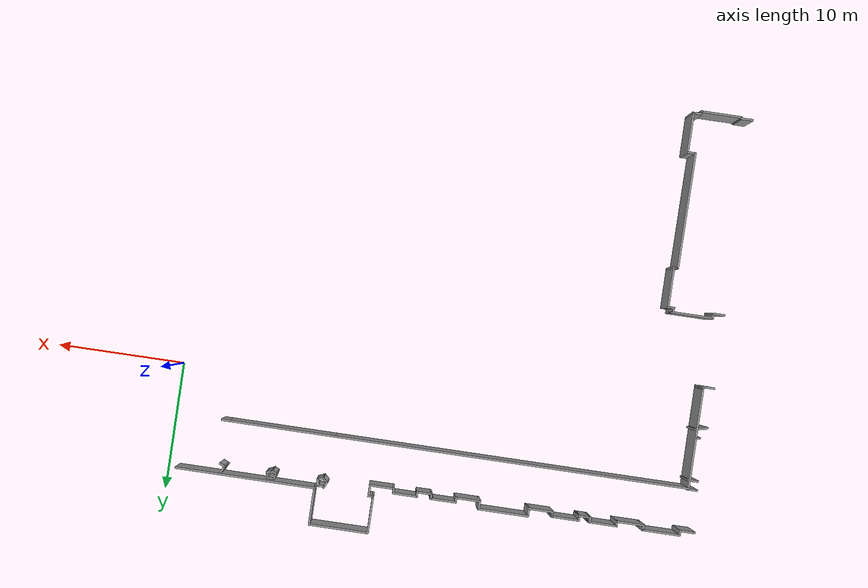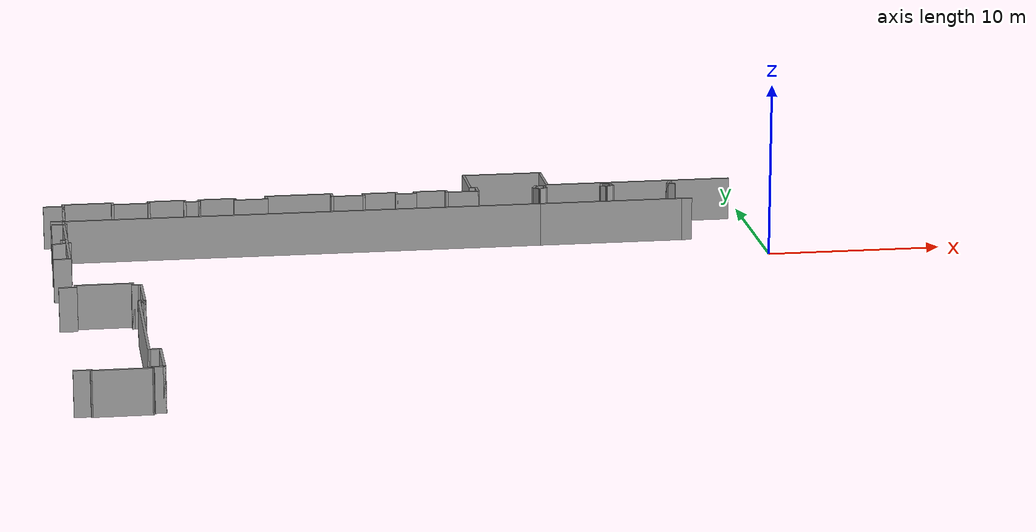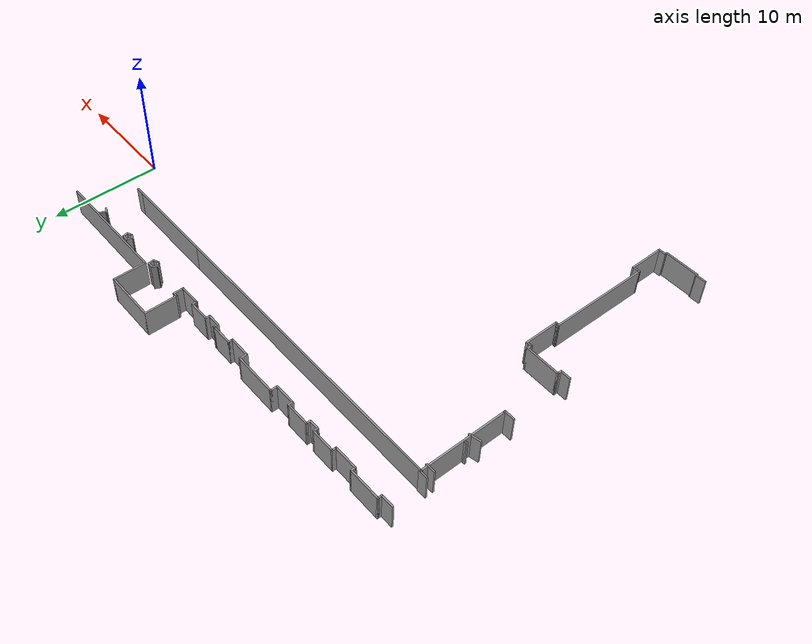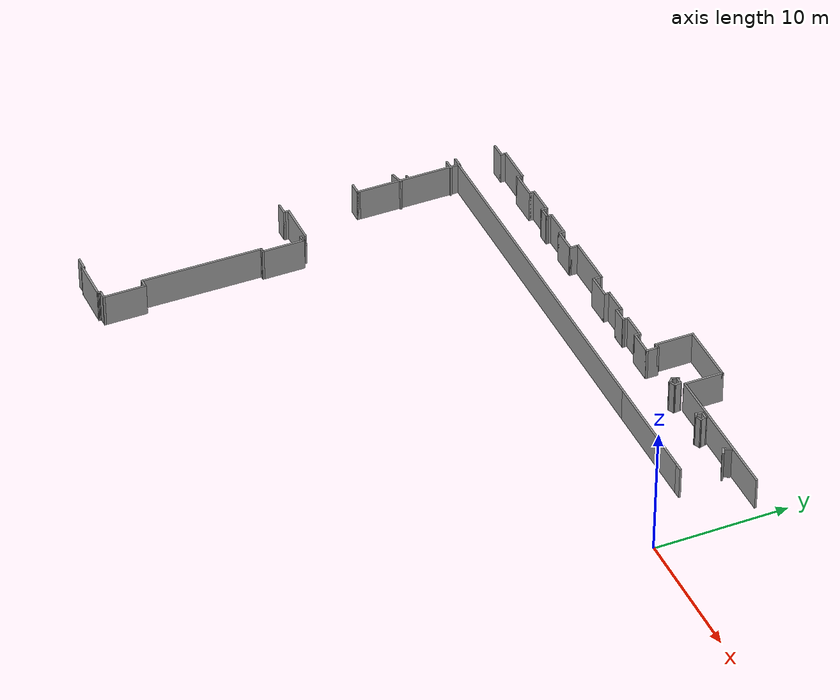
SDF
<sdf version="1.7">
 <model name="TD_n2">
  <pose>-6.42415 -9.1609 0 0 -0 0</pose>
  <link name="Wall_10">
   <collision name="Wall_10_Collision">
    <geometry><box><size>0.25 0.15 2.5</size></box></geometry>
    <pose>0 0 1.25 0 -0 0</pose>
   </collision>
   <visual name="Wall_10_Visual">
    <pose>0 0 1.25 0 -0 0</pose>
    <geometry><box><size>0.25 0.15 2.5</size></box></geometry>
    <material>
     <script><uri>file://media/materials/scripts/gazebo.material</uri><name>Gazebo/Grey</name></script>
     <ambient>1 1 1 1</ambient>
    </material>
    <meta><layer>0</layer></meta>
   </visual>
   <pose>-30.6624 -3.84263 0 0 -0 3.14159</pose>
  </link>
  <link name="Wall_11">
   <collision name="Wall_11_Collision">
    <geometry><box><size>0.25 0.15 2.5</size></box></geometry>
    <pose>0 0 1.25 0 -0 0</pose>
   </collision>
   <visual name="Wall_11_Visual">
    <pose>0 0 1.25 0 -0 0</pose>
    <geometry><box><size>0.25 0.15 2.5</size></box></geometry>
    <material>
     <script><uri>file://media/materials/scripts/gazebo.material</uri><name>Gazebo/Grey</name></script>
     <ambient>1 1 1 1</ambient>
    </material>
    <meta><layer>0</layer></meta>
   </visual>
   <pose>-30.7624 -3.84263 0 0 -0 3.14159</pose>
  </link>
  <link name="Wall_130">
   <collision name="Wall_130_Collision">
    <geometry><box><size>1.25 0.15 2.5</size></box></geometry>
    <pose>0 0 1.25 0 -0 0</pose>
   </collision>
   <visual name="Wall_130_Visual">
    <pose>0 0 1.25 0 -0 0</pose>
    <geometry><box><size>1.25 0.15 2.5</size></box></geometry>
    <material>
     <script><uri>file://media/materials/scripts/gazebo.material</uri><name>Gazebo/Grey</name></script>
     <ambient>1 1 1 1</ambient>
    </material>
    <meta><layer>0</layer></meta>
   </visual>
   <pose>-34.4926 16.2907 0 0 -0 0</pose>
  </link>
  <link name="Wall_131">
   <collision name="Wall_131_Collision">
    <geometry><box><size>0.5 0.15 2.5</size></box></geometry>
    <pose>0 0 1.25 0 -0 0</pose>
   </collision>
   <visual name="Wall_131_Visual">
    <pose>0 0 1.25 0 -0 0</pose>
    <geometry><box><size>0.5 0.15 2.5</size></box></geometry>
    <material>
     <script><uri>file://media/materials/scripts/gazebo.material</uri><name>Gazebo/Grey</name></script>
     <ambient>1 1 1 1</ambient>
    </material>
    <meta><layer>0</layer></meta>
   </visual>
   <pose>-33.9426 16.4657 0 0 -0 1.5708</pose>
  </link>
  <link name="Wall_132">
   <collision name="Wall_132_Collision">
    <geometry><box><size>3 0.15 2.5</size></box></geometry>
    <pose>0 0 1.25 0 -0 0</pose>
   </collision>
   <visual name="Wall_132_Visual">
    <pose>0 0 1.25 0 -0 0</pose>
    <geometry><box><size>3 0.15 2.5</size></box></geometry>
    <material>
     <script><uri>file://media/materials/scripts/gazebo.material</uri><name>Gazebo/Grey</name></script>
     <ambient>1 1 1 1</ambient>
    </material>
    <meta><layer>0</layer></meta>
   </visual>
   <pose>-32.5176 16.6407 0 0 -0 0</pose>
  </link>
  <link name="Wall_133">
   <collision name="Wall_133_Collision">
    <geometry><box><size>0.5 0.15 2.5</size></box></geometry>
    <pose>0 0 1.25 0 -0 0</pose>
   </collision>
   <visual name="Wall_133_Visual">
    <pose>0 0 1.25 0 -0 0</pose>
    <geometry><box><size>0.5 0.15 2.5</size></box></geometry>
    <material>
     <script><uri>file://media/materials/scripts/gazebo.material</uri><name>Gazebo/Grey</name></script>
     <ambient>1 1 1 1</ambient>
    </material>
    <meta><layer>0</layer></meta>
   </visual>
   <pose>-31.0926 16.4657 0 0 -0 -1.5708</pose>
  </link>
  <link name="Wall_134">
   <collision name="Wall_134_Collision">
    <geometry><box><size>2.25 0.15 2.5</size></box></geometry>
    <pose>0 0 1.25 0 -0 0</pose>
   </collision>
   <visual name="Wall_134_Visual">
    <pose>0 0 1.25 0 -0 0</pose>
    <geometry><box><size>2.25 0.15 2.5</size></box></geometry>
    <material>
     <script><uri>file://media/materials/scripts/gazebo.material</uri><name>Gazebo/Grey</name></script>
     <ambient>1 1 1 1</ambient>
    </material>
    <meta><layer>0</layer></meta>
   </visual>
   <pose>-30.0426 16.2907 0 0 -0 0</pose>
  </link>
  <link name="Wall_135">
   <collision name="Wall_135_Collision">
    <geometry><box><size>0.5 0.15 2.5</size></box></geometry>
    <pose>0 0 1.25 0 -0 0</pose>
   </collision>
   <visual name="Wall_135_Visual">
    <pose>0 0 1.25 0 -0 0</pose>
    <geometry><box><size>0.5 0.15 2.5</size></box></geometry>
    <material>
     <script><uri>file://media/materials/scripts/gazebo.material</uri><name>Gazebo/Grey</name></script>
     <ambient>1 1 1 1</ambient>
    </material>
    <meta><layer>0</layer></meta>
   </visual>
   <pose>-28.9926 16.4657 0 0 -0 1.5708</pose>
  </link>
  <link name="Wall_136">
   <collision name="Wall_136_Collision">
    <geometry><box><size>2.25 0.15 2.5</size></box></geometry>
    <pose>0 0 1.25 0 -0 0</pose>
   </collision>
   <visual name="Wall_136_Visual">
    <pose>0 0 1.25 0 -0 0</pose>
    <geometry><box><size>2.25 0.15 2.5</size></box></geometry>
    <material>
     <script><uri>file://media/materials/scripts/gazebo.material</uri><name>Gazebo/Grey</name></script>
     <ambient>1 1 1 1</ambient>
    </material>
    <meta><layer>0</layer></meta>
   </visual>
   <pose>-27.9426 16.6407 0 0 -0 0</pose>
  </link>
  <link name="Wall_137">
   <collision name="Wall_137_Collision">
    <geometry><box><size>0.5 0.15 2.5</size></box></geometry>
    <pose>0 0 1.25 0 -0 0</pose>
   </collision>
   <visual name="Wall_137_Visual">
    <pose>0 0 1.25 0 -0 0</pose>
    <geometry><box><size>0.5 0.15 2.5</size></box></geometry>
    <material>
     <script><uri>file://media/materials/scripts/gazebo.material</uri><name>Gazebo/Grey</name></script>
     <ambient>1 1 1 1</ambient>
    </material>
    <meta><layer>0</layer></meta>
   </visual>
   <pose>-26.8926 16.4657 0 0 -0 -1.5708</pose>
  </link>
  <link name="Wall_138">
   <collision name="Wall_138_Collision">
    <geometry><box><size>1 0.15 2.5</size></box></geometry>
    <pose>0 0 1.25 0 -0 0</pose>
   </collision>
   <visual name="Wall_138_Visual">
    <pose>0 0 1.25 0 -0 0</pose>
    <geometry><box><size>1 0.15 2.5</size></box></geometry>
    <material>
     <script><uri>file://media/materials/scripts/gazebo.material</uri><name>Gazebo/Grey</name></script>
     <ambient>1 1 1 1</ambient>
    </material>
    <meta><layer>0</layer></meta>
   </visual>
   <pose>-26.4676 16.2907 0 0 -0 0</pose>
  </link>
  <link name="Wall_139">
   <collision name="Wall_139_Collision">
    <geometry><box><size>0.5 0.15 2.5</size></box></geometry>
    <pose>0 0 1.25 0 -0 0</pose>
   </collision>
   <visual name="Wall_139_Visual">
    <pose>0 0 1.25 0 -0 0</pose>
    <geometry><box><size>0.5 0.15 2.5</size></box></geometry>
    <material>
     <script><uri>file://media/materials/scripts/gazebo.material</uri><name>Gazebo/Grey</name></script>
     <ambient>1 1 1 1</ambient>
    </material>
    <meta><layer>0</layer></meta>
   </visual>
   <pose>-26.0426 16.4657 0 0 -0 1.5708</pose>
  </link>
  <link name="Wall_140">
   <collision name="Wall_140_Collision">
    <geometry><box><size>2.25 0.15 2.5</size></box></geometry>
    <pose>0 0 1.25 0 -0 0</pose>
   </collision>
   <visual name="Wall_140_Visual">
    <pose>0 0 1.25 0 -0 0</pose>
    <geometry><box><size>2.25 0.15 2.5</size></box></geometry>
    <material>
     <script><uri>file://media/materials/scripts/gazebo.material</uri><name>Gazebo/Grey</name></script>
     <ambient>1 1 1 1</ambient>
    </material>
    <meta><layer>0</layer></meta>
   </visual>
   <pose>-24.9926 16.6407 0 0 -0 0</pose>
  </link>
  <link name="Wall_141">
   <collision name="Wall_141_Collision">
    <geometry><box><size>0.5 0.15 2.5</size></box></geometry>
    <pose>0 0 1.25 0 -0 0</pose>
   </collision>
   <visual name="Wall_141_Visual">
    <pose>0 0 1.25 0 -0 0</pose>
    <geometry><box><size>0.5 0.15 2.5</size></box></geometry>
    <material>
     <script><uri>file://media/materials/scripts/gazebo.material</uri><name>Gazebo/Grey</name></script>
     <ambient>1 1 1 1</ambient>
    </material>
    <meta><layer>0</layer></meta>
   </visual>
   <pose>-23.9426 16.4657 0 0 -0 -1.5708</pose>
  </link>
  <link name="Wall_143">
   <collision name="Wall_143_Collision">
    <geometry><box><size>2 0.15 2.5</size></box></geometry>
    <pose>0 0 1.25 0 -0 0</pose>
   </collision>
   <visual name="Wall_143_Visual">
    <pose>0 0 1.25 0 -0 0</pose>
    <geometry><box><size>2 0.15 2.5</size></box></geometry>
    <material>
     <script><uri>file://media/materials/scripts/gazebo.material</uri><name>Gazebo/Grey</name></script>
     <ambient>1 1 1 1</ambient>
    </material>
    <meta><layer>0</layer></meta>
   </visual>
   <pose>-23.0176 16.2907 0 0 -0 0</pose>
  </link>
  <link name="Wall_144">
   <collision name="Wall_144_Collision">
    <geometry><box><size>0.75 0.15 2.5</size></box></geometry>
    <pose>0 0 1.25 0 -0 0</pose>
   </collision>
   <visual name="Wall_144_Visual">
    <pose>0 0 1.25 0 -0 0</pose>
    <geometry><box><size>0.75 0.15 2.5</size></box></geometry>
    <material>
     <script><uri>file://media/materials/scripts/gazebo.material</uri><name>Gazebo/Grey</name></script>
     <ambient>1 1 1 1</ambient>
    </material>
    <meta><layer>0</layer></meta>
   </visual>
   <pose>-22.0926 16.5907 0 0 -0 1.5708</pose>
  </link>
  <link name="Wall_145">
   <collision name="Wall_145_Collision">
    <geometry><box><size>4 0.15 2.5</size></box></geometry>
    <pose>0 0 1.25 0 -0 0</pose>
   </collision>
   <visual name="Wall_145_Visual">
    <pose>0 0 1.25 0 -0 0</pose>
    <geometry><box><size>4 0.15 2.5</size></box></geometry>
    <material>
     <script><uri>file://media/materials/scripts/gazebo.material</uri><name>Gazebo/Grey</name></script>
     <ambient>1 1 1 1</ambient>
    </material>
    <meta><layer>0</layer></meta>
   </visual>
   <pose>-20.1676 16.8907 0 0 -0 0</pose>
  </link>
  <link name="Wall_146">
   <collision name="Wall_146_Collision">
    <geometry><box><size>0.75 0.15 2.5</size></box></geometry>
    <pose>0 0 1.25 0 -0 0</pose>
   </collision>
   <visual name="Wall_146_Visual">
    <pose>0 0 1.25 0 -0 0</pose>
    <geometry><box><size>0.75 0.15 2.5</size></box></geometry>
    <material>
     <script><uri>file://media/materials/scripts/gazebo.material</uri><name>Gazebo/Grey</name></script>
     <ambient>1 1 1 1</ambient>
    </material>
    <meta><layer>0</layer></meta>
   </visual>
   <pose>-18.2426 16.5907 0 0 -0 -1.5708</pose>
  </link>
  <link name="Wall_147">
   <collision name="Wall_147_Collision">
    <geometry><box><size>2 0.15 2.5</size></box></geometry>
    <pose>0 0 1.25 0 -0 0</pose>
   </collision>
   <visual name="Wall_147_Visual">
    <pose>0 0 1.25 0 -0 0</pose>
    <geometry><box><size>2 0.15 2.5</size></box></geometry>
    <material>
     <script><uri>file://media/materials/scripts/gazebo.material</uri><name>Gazebo/Grey</name></script>
     <ambient>1 1 1 1</ambient>
    </material>
    <meta><layer>0</layer></meta>
   </visual>
   <pose>-17.3176 16.2907 0 0 -0 0</pose>
  </link>
  <link name="Wall_148">
   <collision name="Wall_148_Collision">
    <geometry><box><size>0.5 0.15 2.5</size></box></geometry>
    <pose>0 0 1.25 0 -0 0</pose>
   </collision>
   <visual name="Wall_148_Visual">
    <pose>0 0 1.25 0 -0 0</pose>
    <geometry><box><size>0.5 0.15 2.5</size></box></geometry>
    <material>
     <script><uri>file://media/materials/scripts/gazebo.material</uri><name>Gazebo/Grey</name></script>
     <ambient>1 1 1 1</ambient>
    </material>
    <meta><layer>0</layer></meta>
   </visual>
   <pose>-16.3926 16.4657 0 0 -0 1.5708</pose>
  </link>
  <link name="Wall_149">
   <collision name="Wall_149_Collision">
    <geometry><box><size>2 0.15 2.5</size></box></geometry>
    <pose>0 0 1.25 0 -0 0</pose>
   </collision>
   <visual name="Wall_149_Visual">
    <pose>0 0 1.25 0 -0 0</pose>
    <geometry><box><size>2 0.15 2.5</size></box></geometry>
    <material>
     <script><uri>file://media/materials/scripts/gazebo.material</uri><name>Gazebo/Grey</name></script>
     <ambient>1 1 1 1</ambient>
    </material>
    <meta><layer>0</layer></meta>
   </visual>
   <pose>-15.4676 16.6407 0 0 -0 0</pose>
  </link>
  <link name="Wall_150">
   <collision name="Wall_150_Collision">
    <geometry><box><size>0.25 0.15 2.5</size></box></geometry>
    <pose>0 0 1.25 0 -0 0</pose>
   </collision>
   <visual name="Wall_150_Visual">
    <pose>0 0 1.25 0 -0 0</pose>
    <geometry><box><size>0.25 0.15 2.5</size></box></geometry>
    <material>
     <script><uri>file://media/materials/scripts/gazebo.material</uri><name>Gazebo/Grey</name></script>
     <ambient>1 1 1 1</ambient>
    </material>
    <meta><layer>0</layer></meta>
   </visual>
   <pose>-14.4926 16.6407 0 0 -0 0</pose>
  </link>
  <link name="Wall_151">
   <collision name="Wall_151_Collision">
    <geometry><box><size>0.5 0.15 2.5</size></box></geometry>
    <pose>0 0 1.25 0 -0 0</pose>
   </collision>
   <visual name="Wall_151_Visual">
    <pose>0 0 1.25 0 -0 0</pose>
    <geometry><box><size>0.5 0.15 2.5</size></box></geometry>
    <material>
     <script><uri>file://media/materials/scripts/gazebo.material</uri><name>Gazebo/Grey</name></script>
     <ambient>1 1 1 1</ambient>
    </material>
    <meta><layer>0</layer></meta>
   </visual>
   <pose>-14.4426 16.4657 0 0 -0 -1.5708</pose>
  </link>
  <link name="Wall_152">
   <collision name="Wall_152_Collision">
    <geometry><box><size>1.25 0.15 2.5</size></box></geometry>
    <pose>0 0 1.25 0 -0 0</pose>
   </collision>
   <visual name="Wall_152_Visual">
    <pose>0 0 1.25 0 -0 0</pose>
    <geometry><box><size>1.25 0.15 2.5</size></box></geometry>
    <material>
     <script><uri>file://media/materials/scripts/gazebo.material</uri><name>Gazebo/Grey</name></script>
     <ambient>1 1 1 1</ambient>
    </material>
    <meta><layer>0</layer></meta>
   </visual>
   <pose>-13.8926 16.2907 0 0 -0 0</pose>
  </link>
  <link name="Wall_153">
   <collision name="Wall_153_Collision">
    <geometry><box><size>0.5 0.15 2.5</size></box></geometry>
    <pose>0 0 1.25 0 -0 0</pose>
   </collision>
   <visual name="Wall_153_Visual">
    <pose>0 0 1.25 0 -0 0</pose>
    <geometry><box><size>0.5 0.15 2.5</size></box></geometry>
    <material>
     <script><uri>file://media/materials/scripts/gazebo.material</uri><name>Gazebo/Grey</name></script>
     <ambient>1 1 1 1</ambient>
    </material>
    <meta><layer>0</layer></meta>
   </visual>
   <pose>-13.3426 16.4657 0 0 -0 1.5708</pose>
  </link>
  <link name="Wall_154">
   <collision name="Wall_154_Collision">
    <geometry><box><size>2 0.15 2.5</size></box></geometry>
    <pose>0 0 1.25 0 -0 0</pose>
   </collision>
   <visual name="Wall_154_Visual">
    <pose>0 0 1.25 0 -0 0</pose>
    <geometry><box><size>2 0.15 2.5</size></box></geometry>
    <material>
     <script><uri>file://media/materials/scripts/gazebo.material</uri><name>Gazebo/Grey</name></script>
     <ambient>1 1 1 1</ambient>
    </material>
    <meta><layer>0</layer></meta>
   </visual>
   <pose>-12.4176 16.6407 0 0 -0 0</pose>
  </link>
  <link name="Wall_155">
   <collision name="Wall_155_Collision">
    <geometry><box><size>0.5 0.15 2.5</size></box></geometry>
    <pose>0 0 1.25 0 -0 0</pose>
   </collision>
   <visual name="Wall_155_Visual">
    <pose>0 0 1.25 0 -0 0</pose>
    <geometry><box><size>0.5 0.15 2.5</size></box></geometry>
    <material>
     <script><uri>file://media/materials/scripts/gazebo.material</uri><name>Gazebo/Grey</name></script>
     <ambient>1 1 1 1</ambient>
    </material>
    <meta><layer>0</layer></meta>
   </visual>
   <pose>-11.4926 16.4657 0 0 -0 -1.5708</pose>
  </link>
  <link name="Wall_156">
   <collision name="Wall_156_Collision">
    <geometry><box><size>2 0.15 2.5</size></box></geometry>
    <pose>0 0 1.25 0 -0 0</pose>
   </collision>
   <visual name="Wall_156_Visual">
    <pose>0 0 1.25 0 -0 0</pose>
    <geometry><box><size>2 0.15 2.5</size></box></geometry>
    <material>
     <script><uri>file://media/materials/scripts/gazebo.material</uri><name>Gazebo/Grey</name></script>
     <ambient>1 1 1 1</ambient>
    </material>
    <meta><layer>0</layer></meta>
   </visual>
   <pose>-10.5676 16.2907 0 0 -0 0</pose>
  </link>
  <link name="Wall_159">
   <collision name="Wall_159_Collision">
    <geometry><box><size>1 0.15 2.5</size></box></geometry>
    <pose>0 0 1.25 0 -0 0</pose>
   </collision>
   <visual name="Wall_159_Visual">
    <pose>0 0 1.25 0 -0 0</pose>
    <geometry><box><size>1 0.15 2.5</size></box></geometry>
    <material>
     <script><uri>file://media/materials/scripts/gazebo.material</uri><name>Gazebo/Grey</name></script>
     <ambient>1 1 1 1</ambient>
    </material>
    <meta><layer>0</layer></meta>
   </visual>
   <pose>-9.64265 16.7157 0 0 -0 1.5708</pose>
  </link>
  <link name="Wall_16">
   <collision name="Wall_16_Collision">
    <geometry><box><size>9.16715 0.15 2.5</size></box></geometry>
    <pose>0 0 1.25 0 -0 0</pose>
   </collision>
   <visual name="Wall_16_Visual">
    <pose>0 0 1.25 0 -0 0</pose>
    <geometry><box><size>9.16715 0.15 2.5</size></box></geometry>
    <material>
     <script><uri>file://media/materials/scripts/gazebo.material</uri><name>Gazebo/Grey</name></script>
     <ambient>1 1 1 1</ambient>
    </material>
    <meta><layer>0</layer></meta>
   </visual>
   <pose>-30.8459 -8.35108 0 0 -0 1.56337</pose>
  </link>
  <link name="Wall_160">
   <collision name="Wall_160_Collision">
    <geometry><box><size>0.5 0.15 2.5</size></box></geometry>
    <pose>0 0 1.25 0 -0 0</pose>
   </collision>
   <visual name="Wall_160_Visual">
    <pose>0 0 1.25 0 -0 0</pose>
    <geometry><box><size>0.5 0.15 2.5</size></box></geometry>
    <material>
     <script><uri>file://media/materials/scripts/gazebo.material</uri><name>Gazebo/Grey</name></script>
     <ambient>1 1 1 1</ambient>
    </material>
    <meta><layer>0</layer></meta>
   </visual>
   <pose>-9.81765 17.1407 0 0 -0 3.14159</pose>
  </link>
  <link name="Wall_161">
   <collision name="Wall_161_Collision">
    <geometry><box><size>3 0.15 2.5</size></box></geometry>
    <pose>0 0 1.25 0 -0 0</pose>
   </collision>
   <visual name="Wall_161_Visual">
    <pose>0 0 1.25 0 -0 0</pose>
    <geometry><box><size>3 0.15 2.5</size></box></geometry>
    <material>
     <script><uri>file://media/materials/scripts/gazebo.material</uri><name>Gazebo/Grey</name></script>
     <ambient>1 1 1 1</ambient>
    </material>
    <meta><layer>0</layer></meta>
   </visual>
   <pose>-9.99265 18.5657 0 0 -0 1.5708</pose>
  </link>
  <link name="Wall_162">
   <collision name="Wall_162_Collision">
    <geometry><box><size>4.75 0.15 2.5</size></box></geometry>
    <pose>0 0 1.25 0 -0 0</pose>
   </collision>
   <visual name="Wall_162_Visual">
    <pose>0 0 1.25 0 -0 0</pose>
    <geometry><box><size>4.75 0.15 2.5</size></box></geometry>
    <material>
     <script><uri>file://media/materials/scripts/gazebo.material</uri><name>Gazebo/Grey</name></script>
     <ambient>1 1 1 1</ambient>
    </material>
    <meta><layer>0</layer></meta>
   </visual>
   <pose>-7.69265 19.9907 0 0 -0 0</pose>
  </link>
  <link name="Wall_163">
   <collision name="Wall_163_Collision">
    <geometry><box><size>3 0.15 2.5</size></box></geometry>
    <pose>0 0 1.25 0 -0 0</pose>
   </collision>
   <visual name="Wall_163_Visual">
    <pose>0 0 1.25 0 -0 0</pose>
    <geometry><box><size>3 0.15 2.5</size></box></geometry>
    <material>
     <script><uri>file://media/materials/scripts/gazebo.material</uri><name>Gazebo/Grey</name></script>
     <ambient>1 1 1 1</ambient>
    </material>
    <meta><layer>0</layer></meta>
   </visual>
   <pose>-5.39265 18.5657 0 0 -0 -1.5708</pose>
  </link>
  <link name="Wall_165">
   <collision name="Wall_165_Collision">
    <geometry><box><size>11 0.15 2.5</size></box></geometry>
    <pose>0 0 1.25 0 -0 0</pose>
   </collision>
   <visual name="Wall_165_Visual">
    <pose>0 0 1.25 0 -0 0</pose>
    <geometry><box><size>11 0.15 2.5</size></box></geometry>
    <material>
     <script><uri>file://media/materials/scripts/gazebo.material</uri><name>Gazebo/Grey</name></script>
     <ambient>1 1 1 1</ambient>
    </material>
    <meta><layer>0</layer></meta>
   </visual>
   <pose>0.032351 17.1407 0 0 -0 0</pose>
  </link>
  <link name="Wall_18">
   <collision name="Wall_18_Collision">
    <geometry><box><size>0.75 0.15 2.5</size></box></geometry>
    <pose>0 0 1.25 0 -0 0</pose>
   </collision>
   <visual name="Wall_18_Visual">
    <pose>0 0 1.25 0 -0 0</pose>
    <geometry><box><size>0.75 0.15 2.5</size></box></geometry>
    <material>
     <script><uri>file://media/materials/scripts/gazebo.material</uri><name>Gazebo/Grey</name></script>
     <ambient>1 1 1 1</ambient>
    </material>
    <meta><layer>0</layer></meta>
   </visual>
   <pose>-30.5794 -12.8595 0 0 -0 0</pose>
  </link>
  <link name="Wall_19">
   <collision name="Wall_19_Collision">
    <geometry><box><size>3.25 0.15 2.5</size></box></geometry>
    <pose>0 0 1.25 0 -0 0</pose>
   </collision>
   <visual name="Wall_19_Visual">
    <pose>0 0 1.25 0 -0 0</pose>
    <geometry><box><size>3.25 0.15 2.5</size></box></geometry>
    <material>
     <script><uri>file://media/materials/scripts/gazebo.material</uri><name>Gazebo/Grey</name></script>
     <ambient>1 1 1 1</ambient>
    </material>
    <meta><layer>0</layer></meta>
   </visual>
   <pose>-30.2794 -14.4095 0 0 -0 -1.5708</pose>
  </link>
  <link name="Wall_2">
   <collision name="Wall_2_Collision">
    <geometry><box><size>1 0.15 2.5</size></box></geometry>
    <pose>0 0 1.25 0 -0 0</pose>
   </collision>
   <visual name="Wall_2_Visual">
    <pose>0 0 1.25 0 -0 0</pose>
    <geometry><box><size>1 0.15 2.5</size></box></geometry>
    <material>
     <script><uri>file://media/materials/scripts/gazebo.material</uri><name>Gazebo/Grey</name></script>
     <ambient>1 1 1 1</ambient>
    </material>
    <meta><layer>0</layer></meta>
   </visual>
   <pose>-34.4874 -0.742626 0 0 -0 0</pose>
  </link>
  <link name="Wall_20">
   <collision name="Wall_20_Collision">
    <geometry><box><size>0.75 0.15 2.5</size></box></geometry>
    <pose>0 0 1.25 0 -0 0</pose>
   </collision>
   <visual name="Wall_20_Visual">
    <pose>0 0 1.25 0 -0 0</pose>
    <geometry><box><size>0.75 0.15 2.5</size></box></geometry>
    <material>
     <script><uri>file://media/materials/scripts/gazebo.material</uri><name>Gazebo/Grey</name></script>
     <ambient>1 1 1 1</ambient>
    </material>
    <meta><layer>0</layer></meta>
   </visual>
   <pose>-30.5794 -15.9595 0 0 -0 3.14159</pose>
  </link>
  <link name="Wall_21">
   <collision name="Wall_21_Collision">
    <geometry><box><size>0.25 0.15 2.5</size></box></geometry>
    <pose>0 0 1.25 0 -0 0</pose>
   </collision>
   <visual name="Wall_21_Visual">
    <pose>0 0 1.25 0 -0 0</pose>
    <geometry><box><size>0.25 0.15 2.5</size></box></geometry>
    <material>
     <script><uri>file://media/materials/scripts/gazebo.material</uri><name>Gazebo/Grey</name></script>
     <ambient>1 1 1 1</ambient>
    </material>
    <meta><layer>0</layer></meta>
   </visual>
   <pose>-30.8794 -16.0095 0 0 -0 -1.5708</pose>
  </link>
  <link name="Wall_22">
   <collision name="Wall_22_Collision">
    <geometry><box><size>0.25 0.15 2.5</size></box></geometry>
    <pose>0 0 1.25 0 -0 0</pose>
   </collision>
   <visual name="Wall_22_Visual">
    <pose>0 0 1.25 0 -0 0</pose>
    <geometry><box><size>0.25 0.15 2.5</size></box></geometry>
    <material>
     <script><uri>file://media/materials/scripts/gazebo.material</uri><name>Gazebo/Grey</name></script>
     <ambient>1 1 1 1</ambient>
    </material>
    <meta><layer>0</layer></meta>
   </visual>
   <pose>-30.8924 -16.1078 0 0 -0 -1.8326</pose>
  </link>
  <link name="Wall_23">
   <collision name="Wall_23_Collision">
    <geometry><box><size>3.25 0.15 2.5</size></box></geometry>
    <pose>0 0 1.25 0 -0 0</pose>
   </collision>
   <visual name="Wall_23_Visual">
    <pose>0 0 1.25 0 -0 0</pose>
    <geometry><box><size>3.25 0.15 2.5</size></box></geometry>
    <material>
     <script><uri>file://media/materials/scripts/gazebo.material</uri><name>Gazebo/Grey</name></script>
     <ambient>1 1 1 1</ambient>
    </material>
    <meta><layer>0</layer></meta>
   </visual>
   <pose>-32.4553 -16.1561 0 0 -0 3.14159</pose>
  </link>
  <link name="Wall_24">
   <collision name="Wall_24_Collision">
    <geometry><box><size>0.25 0.15 2.5</size></box></geometry>
    <pose>0 0 1.25 0 -0 0</pose>
   </collision>
   <visual name="Wall_24_Visual">
    <pose>0 0 1.25 0 -0 0</pose>
    <geometry><box><size>0.25 0.15 2.5</size></box></geometry>
    <material>
     <script><uri>file://media/materials/scripts/gazebo.material</uri><name>Gazebo/Grey</name></script>
     <ambient>1 1 1 1</ambient>
    </material>
    <meta><layer>0</layer></meta>
   </visual>
   <pose>-34.0183 -16.1078 0 0 -0 1.8326</pose>
  </link>
  <link name="Wall_25">
   <collision name="Wall_25_Collision">
    <geometry><box><size>1 0.15 2.5</size></box></geometry>
    <pose>0 0 1.25 0 -0 0</pose>
   </collision>
   <visual name="Wall_25_Visual">
    <pose>0 0 1.25 0 -0 0</pose>
    <geometry><box><size>1 0.15 2.5</size></box></geometry>
    <material>
     <script><uri>file://media/materials/scripts/gazebo.material</uri><name>Gazebo/Grey</name></script>
     <ambient>1 1 1 1</ambient>
    </material>
    <meta><layer>0</layer></meta>
   </visual>
   <pose>-34.4562 -16.0595 0 0 -0 3.14159</pose>
  </link>
  <link name="Wall_3">
   <collision name="Wall_3_Collision">
    <geometry><box><size>0.5 0.15 2.5</size></box></geometry>
    <pose>0 0 1.25 0 -0 0</pose>
   </collision>
   <visual name="Wall_3_Visual">
    <pose>0 0 1.25 0 -0 0</pose>
    <geometry><box><size>0.5 0.15 2.5</size></box></geometry>
    <material>
     <script><uri>file://media/materials/scripts/gazebo.material</uri><name>Gazebo/Grey</name></script>
     <ambient>1 1 1 1</ambient>
    </material>
    <meta><layer>0</layer></meta>
   </visual>
   <pose>-34.0624 -0.567626 0 0 -0 1.5708</pose>
  </link>
  <link name="Wall_304">
   <collision name="Wall_304_Collision">
    <geometry><box><size>0.75 0.15 2.5</size></box></geometry>
    <pose>0 0 1.25 0 -0 0</pose>
   </collision>
   <visual name="Wall_304_Visual">
    <pose>0 0 1.25 0 -0 0</pose>
    <geometry><box><size>0.75 0.15 2.5</size></box></geometry>
    <material>
     <script><uri>file://media/materials/scripts/gazebo.material</uri><name>Gazebo/Grey</name></script>
     <ambient>1 1 1 1</ambient>
    </material>
    <meta><layer>0</layer></meta>
   </visual>
   <pose>2.14659 12.9461 0 0 -0 3.14159</pose>
  </link>
  <link name="Wall_306">
   <collision name="Wall_306_Collision">
    <geometry><box><size>8.5 0.15 2.5</size></box></geometry>
    <pose>0 0 1.25 0 -0 0</pose>
   </collision>
   <visual name="Wall_306_Visual">
    <pose>0 0 1.25 0 -0 0</pose>
    <geometry><box><size>8.5 0.15 2.5</size></box></geometry>
    <material>
     <script><uri>file://media/materials/scripts/gazebo.material</uri><name>Gazebo/Grey</name></script>
     <ambient>1 1 1 1</ambient>
    </material>
    <meta><layer>0</layer></meta>
   </visual>
   <pose>-2.32841 12.9461 0 0 -0 3.14159</pose>
  </link>
  <link name="Wall_308">
   <collision name="Wall_308_Collision">
    <geometry><box><size>27.75 0.15 2.5</size></box></geometry>
    <pose>0 0 1.25 0 -0 0</pose>
   </collision>
   <visual name="Wall_308_Visual">
    <pose>0 0 1.25 0 -0 0</pose>
    <geometry><box><size>27.75 0.15 2.5</size></box></geometry>
    <material>
     <script><uri>file://media/materials/scripts/gazebo.material</uri><name>Gazebo/Grey</name></script>
     <ambient>1 1 1 1</ambient>
    </material>
    <meta><layer>0</layer></meta>
   </visual>
   <pose>-20.3034 12.9461 0 0 -0 3.14159</pose>
  </link>
  <link name="Wall_310">
   <collision name="Wall_310_Collision">
    <geometry><box><size>8 0.15 2.5</size></box></geometry>
    <pose>0 0 1.25 0 -0 0</pose>
   </collision>
   <visual name="Wall_310_Visual">
    <pose>0 0 1.25 0 -0 0</pose>
    <geometry><box><size>8 0.15 2.5</size></box></geometry>
    <material>
     <script><uri>file://media/materials/scripts/gazebo.material</uri><name>Gazebo/Grey</name></script>
     <ambient>1 1 1 1</ambient>
    </material>
    <meta><layer>0</layer></meta>
   </visual>
   <pose>-34.1034 9.02107 0 0 -0 -1.5708</pose>
  </link>
  <link name="Wall_311">
   <collision name="Wall_311_Collision">
    <geometry><box><size>0.25 0.15 2.5</size></box></geometry>
    <pose>0 0 1.25 0 -0 0</pose>
   </collision>
   <visual name="Wall_311_Visual">
    <pose>0 0 1.25 0 -0 0</pose>
    <geometry><box><size>0.25 0.15 2.5</size></box></geometry>
    <material>
     <script><uri>file://media/materials/scripts/gazebo.material</uri><name>Gazebo/Grey</name></script>
     <ambient>1 1 1 1</ambient>
    </material>
    <meta><layer>0</layer></meta>
   </visual>
   <pose>-34.1034 5.04607 0 0 -0 -1.5708</pose>
  </link>
  <link name="Wall_312">
   <collision name="Wall_312_Collision">
    <geometry><box><size>1 0.15 2.5</size></box></geometry>
    <pose>0 0 1.25 0 -0 0</pose>
   </collision>
   <visual name="Wall_312_Visual">
    <pose>0 0 1.25 0 -0 0</pose>
    <geometry><box><size>1 0.15 2.5</size></box></geometry>
    <material>
     <script><uri>file://media/materials/scripts/gazebo.material</uri><name>Gazebo/Grey</name></script>
     <ambient>1 1 1 1</ambient>
    </material>
    <meta><layer>0</layer></meta>
   </visual>
   <pose>-34.5284 4.99607 0 0 -0 3.14159</pose>
  </link>
  <link name="Wall_4">
   <collision name="Wall_4_Collision">
    <geometry><box><size>3.25 0.15 2.5</size></box></geometry>
    <pose>0 0 1.25 0 -0 0</pose>
   </collision>
   <visual name="Wall_4_Visual">
    <pose>0 0 1.25 0 -0 0</pose>
    <geometry><box><size>3.25 0.15 2.5</size></box></geometry>
    <material>
     <script><uri>file://media/materials/scripts/gazebo.material</uri><name>Gazebo/Grey</name></script>
     <ambient>1 1 1 1</ambient>
    </material>
    <meta><layer>0</layer></meta>
   </visual>
   <pose>-32.5124 -0.392626 0 0 -0 0</pose>
  </link>
  <link name="Wall_408">
   <collision name="Wall_408_Collision">
    <geometry><box><size>0.853575 0.15 2.5</size></box></geometry>
    <pose>0 0 1.25 0 -0 0</pose>
   </collision>
   <visual name="Wall_408_Visual">
    <pose>0 0 1.25 0 -0 0</pose>
    <geometry><box><size>0.853575 0.15 2.5</size></box></geometry>
    <material>
     <script><uri>file://media/materials/scripts/gazebo.material</uri><name>Gazebo/Grey</name></script>
     <ambient>1 1 1 1</ambient>
    </material>
    <meta><layer>0</layer></meta>
   </visual>
   <pose>-34.4031 13.0129 0 0 -0 3.14159</pose>
  </link>
  <link name="Wall_410">
   <collision name="Wall_410_Collision">
    <geometry><box><size>0.884165 0.15 2.5</size></box></geometry>
    <pose>0 0 1.25 0 -0 0</pose>
   </collision>
   <visual name="Wall_410_Visual">
    <pose>0 0 1.25 0 -0 0</pose>
    <geometry><box><size>0.884165 0.15 2.5</size></box></geometry>
    <material>
     <script><uri>file://media/materials/scripts/gazebo.material</uri><name>Gazebo/Grey</name></script>
     <ambient>1 1 1 1</ambient>
    </material>
    <meta><layer>0</layer></meta>
   </visual>
   <pose>-34.3572 12.3093 0 0 -0 0</pose>
  </link>
  <link name="Wall_414">
   <collision name="Wall_414_Collision">
    <geometry><box><size>1.09236 0.15 2.5</size></box></geometry>
    <pose>0 0 1.25 0 -0 0</pose>
   </collision>
   <visual name="Wall_414_Visual">
    <pose>0 0 1.25 0 -0 0</pose>
    <geometry><box><size>1.09236 0.15 2.5</size></box></geometry>
    <material>
     <script><uri>file://media/materials/scripts/gazebo.material</uri><name>Gazebo/Grey</name></script>
     <ambient>1 1 1 1</ambient>
    </material>
    <meta><layer>0</layer></meta>
   </visual>
   <pose>-34.4184 8.22548 0 0 -0 0.229232</pose>
  </link>
  <link name="Wall_416">
   <collision name="Wall_416_Collision">
    <geometry><box><size>0.25 0.15 2.5</size></box></geometry>
    <pose>0 0 1.25 0 -0 0</pose>
   </collision>
   <visual name="Wall_416_Visual">
    <pose>0 0 1.25 0 -0 0</pose>
    <geometry><box><size>0.25 0.15 2.5</size></box></geometry>
    <material>
     <script><uri>file://media/materials/scripts/gazebo.material</uri><name>Gazebo/Grey</name></script>
     <ambient>1 1 1 1</ambient>
    </material>
    <meta><layer>0</layer></meta>
   </visual>
   <pose>-34.3378 8.97494 0 0 -0 0</pose>
  </link>
  <link name="Wall_417">
   <collision name="Wall_417_Collision">
    <geometry><box><size>0.25 0.15 2.5</size></box></geometry>
    <pose>0 0 1.25 0 -0 0</pose>
   </collision>
   <visual name="Wall_417_Visual">
    <pose>0 0 1.25 0 -0 0</pose>
    <geometry><box><size>0.25 0.15 2.5</size></box></geometry>
    <material>
     <script><uri>file://media/materials/scripts/gazebo.material</uri><name>Gazebo/Grey</name></script>
     <ambient>1 1 1 1</ambient>
    </material>
    <meta><layer>0</layer></meta>
   </visual>
   <pose>-34.2378 8.97494 0 0 -0 0</pose>
  </link>
  <link name="Wall_469">
   <collision name="Wall_469_Collision">
    <geometry><box><size>0.612612 0.15 2.5</size></box></geometry>
    <pose>0 0 1.25 0 -0 0</pose>
   </collision>
   <visual name="Wall_469_Visual">
    <pose>0 0 1.25 0 -0 0</pose>
    <geometry><box><size>0.612612 0.15 2.5</size></box></geometry>
    <material>
     <script><uri>file://media/materials/scripts/gazebo.material</uri><name>Gazebo/Grey</name></script>
     <ambient>1 1 1 1</ambient>
    </material>
    <meta><layer>0</layer></meta>
   </visual>
   <pose>-5.85818 16.9123 0 0 -0 0</pose>
  </link>
  <link name="Wall_470">
   <collision name="Wall_470_Collision">
    <geometry><box><size>0.596594 0.15 2.5</size></box></geometry>
    <pose>0 0 1.25 0 -0 0</pose>
   </collision>
   <visual name="Wall_470_Visual">
    <pose>0 0 1.25 0 -0 0</pose>
    <geometry><box><size>0.596594 0.15 2.5</size></box></geometry>
    <material>
     <script><uri>file://media/materials/scripts/gazebo.material</uri><name>Gazebo/Grey</name></script>
     <ambient>1 1 1 1</ambient>
    </material>
    <meta><layer>0</layer></meta>
   </visual>
   <pose>-5.59671 16.691 0 0 -0 -1.43527</pose>
  </link>
  <link name="Wall_471">
   <collision name="Wall_471_Collision">
    <geometry><box><size>0.591125 0.15 2.5</size></box></geometry>
    <pose>0 0 1.25 0 -0 0</pose>
   </collision>
   <visual name="Wall_471_Visual">
    <pose>0 0 1.25 0 -0 0</pose>
    <geometry><box><size>0.591125 0.15 2.5</size></box></geometry>
    <material>
     <script><uri>file://media/materials/scripts/gazebo.material</uri><name>Gazebo/Grey</name></script>
     <ambient>1 1 1 1</ambient>
    </material>
    <meta><layer>0</layer></meta>
   </visual>
   <pose>-5.76767 16.3793 0 0 -0 -2.71874</pose>
  </link>
  <link name="Wall_472">
   <collision name="Wall_472_Collision">
    <geometry><box><size>0.591125 0.15 2.5</size></box></geometry>
    <pose>0 0 1.25 0 -0 0</pose>
   </collision>
   <visual name="Wall_472_Visual">
    <pose>0 0 1.25 0 -0 0</pose>
    <geometry><box><size>0.591125 0.15 2.5</size></box></geometry>
    <material>
     <script><uri>file://media/materials/scripts/gazebo.material</uri><name>Gazebo/Grey</name></script>
     <ambient>1 1 1 1</ambient>
    </material>
    <meta><layer>0</layer></meta>
   </visual>
   <pose>-6.12972 16.4396 0 0 -0 2.38844</pose>
  </link>
  <link name="Wall_473">
   <collision name="Wall_473_Collision">
    <geometry><box><size>0.591125 0.15 2.5</size></box></geometry>
    <pose>0 0 1.25 0 -0 0</pose>
   </collision>
   <visual name="Wall_473_Visual">
    <pose>0 0 1.25 0 -0 0</pose>
    <geometry><box><size>0.591125 0.15 2.5</size></box></geometry>
    <material>
     <script><uri>file://media/materials/scripts/gazebo.material</uri><name>Gazebo/Grey</name></script>
     <ambient>1 1 1 1</ambient>
    </material>
    <meta><layer>0</layer></meta>
   </visual>
   <pose>-6.20011 16.7916 0 0 -0 1.14794</pose>
  </link>
  <link name="Wall_475">
   <collision name="Wall_475_Collision">
    <geometry><box><size>0.592955 0.15 2.5</size></box></geometry>
    <pose>0 0 1.25 0 -0 0</pose>
   </collision>
   <visual name="Wall_475_Visual">
    <pose>0 0 1.25 0 -0 0</pose>
    <geometry><box><size>0.592955 0.15 2.5</size></box></geometry>
    <material>
     <script><uri>file://media/materials/scripts/gazebo.material</uri><name>Gazebo/Grey</name></script>
     <ambient>1 1 1 1</ambient>
    </material>
    <meta><layer>0</layer></meta>
   </visual>
   <pose>-1.90586 16.8821 0 0 -0 -0.045423</pose>
  </link>
  <link name="Wall_476">
   <collision name="Wall_476_Collision">
    <geometry><box><size>0.545169 0.15 2.5</size></box></geometry>
    <pose>0 0 1.25 0 -0 0</pose>
   </collision>
   <visual name="Wall_476_Visual">
    <pose>0 0 1.25 0 -0 0</pose>
    <geometry><box><size>0.545169 0.15 2.5</size></box></geometry>
    <material>
     <script><uri>file://media/materials/scripts/gazebo.material</uri><name>Gazebo/Grey</name></script>
     <ambient>1 1 1 1</ambient>
    </material>
    <meta><layer>0</layer></meta>
   </visual>
   <pose>-1.63433 16.681 0 0 -0 -1.31347</pose>
  </link>
  <link name="Wall_477">
   <collision name="Wall_477_Collision">
    <geometry><box><size>0.572864 0.15 2.5</size></box></geometry>
    <pose>0 0 1.25 0 -0 0</pose>
   </collision>
   <visual name="Wall_477_Visual">
    <pose>0 0 1.25 0 -0 0</pose>
    <geometry><box><size>0.572864 0.15 2.5</size></box></geometry>
    <material>
     <script><uri>file://media/materials/scripts/gazebo.material</uri><name>Gazebo/Grey</name></script>
     <ambient>1 1 1 1</ambient>
    </material>
    <meta><layer>0</layer></meta>
   </visual>
   <pose>-1.77513 16.3994 0 0 -0 -2.69922</pose>
  </link>
  <link name="Wall_478">
   <collision name="Wall_478_Collision">
    <geometry><box><size>0.482939 0.15 2.5</size></box></geometry>
    <pose>0 0 1.25 0 -0 0</pose>
   </collision>
   <visual name="Wall_478_Visual">
    <pose>0 0 1.25 0 -0 0</pose>
    <geometry><box><size>0.482939 0.15 2.5</size></box></geometry>
    <material>
     <script><uri>file://media/materials/scripts/gazebo.material</uri><name>Gazebo/Grey</name></script>
     <ambient>1 1 1 1</ambient>
    </material>
    <meta><layer>0</layer></meta>
   </visual>
   <pose>-2.11706 16.3793 0 0 -0 2.70497</pose>
  </link>
  <link name="Wall_479">
   <collision name="Wall_479_Collision">
    <geometry><box><size>0.579979 0.15 2.5</size></box></geometry>
    <pose>0 0 1.25 0 -0 0</pose>
   </collision>
   <visual name="Wall_479_Visual">
    <pose>0 0 1.25 0 -0 0</pose>
    <geometry><box><size>0.579979 0.15 2.5</size></box></geometry>
    <material>
     <script><uri>file://media/materials/scripts/gazebo.material</uri><name>Gazebo/Grey</name></script>
     <ambient>1 1 1 1</ambient>
    </material>
    <meta><layer>0</layer></meta>
   </visual>
   <pose>-2.22768 16.6609 0 0 -0 1.38258</pose>
  </link>
  <link name="Wall_484">
   <collision name="Wall_484_Collision">
    <geometry><box><size>0.554778 0.15 2.5</size></box></geometry>
    <pose>0 0 1.25 0 -0 0</pose>
   </collision>
   <visual name="Wall_484_Visual">
    <pose>0 0 1.25 0 -0 0</pose>
    <geometry><box><size>0.554778 0.15 2.5</size></box></geometry>
    <material>
     <script><uri>file://media/materials/scripts/gazebo.material</uri><name>Gazebo/Grey</name></script>
     <ambient>1 1 1 1</ambient>
    </material>
    <meta><layer>0</layer></meta>
   </visual>
   <pose>1.91571 16.4195 0 0 -0 2.67794</pose>
  </link>
  <link name="Wall_485">
   <collision name="Wall_485_Collision">
    <geometry><box><size>0.671791 0.15 2.5</size></box></geometry>
    <pose>0 0 1.25 0 -0 0</pose>
   </collision>
   <visual name="Wall_485_Visual">
    <pose>0 0 1.25 0 -0 0</pose>
    <geometry><box><size>0.671791 0.15 2.5</size></box></geometry>
    <material>
     <script><uri>file://media/materials/scripts/gazebo.material</uri><name>Gazebo/Grey</name></script>
     <ambient>1 1 1 1</ambient>
    </material>
    <meta><layer>0</layer></meta>
   </visual>
   <pose>1.85537 16.7413 0 0 -0 1.08991</pose>
  </link>
  <link name="Wall_5">
   <collision name="Wall_5_Collision">
    <geometry><box><size>0.5 0.15 2.5</size></box></geometry>
    <pose>0 0 1.25 0 -0 0</pose>
   </collision>
   <visual name="Wall_5_Visual">
    <pose>0 0 1.25 0 -0 0</pose>
    <geometry><box><size>0.5 0.15 2.5</size></box></geometry>
    <material>
     <script><uri>file://media/materials/scripts/gazebo.material</uri><name>Gazebo/Grey</name></script>
     <ambient>1 1 1 1</ambient>
    </material>
    <meta><layer>0</layer></meta>
   </visual>
   <pose>-30.9624 -0.567626 0 0 -0 -1.5708</pose>
  </link>
  <link name="Wall_6">
   <collision name="Wall_6_Collision">
    <geometry><box><size>0.5 0.15 2.5</size></box></geometry>
    <pose>0 0 1.25 0 -0 0</pose>
   </collision>
   <visual name="Wall_6_Visual">
    <pose>0 0 1.25 0 -0 0</pose>
    <geometry><box><size>0.5 0.15 2.5</size></box></geometry>
    <material>
     <script><uri>file://media/materials/scripts/gazebo.material</uri><name>Gazebo/Grey</name></script>
     <ambient>1 1 1 1</ambient>
    </material>
    <meta><layer>0</layer></meta>
   </visual>
   <pose>-30.7874 -0.742626 0 0 -0 0</pose>
  </link>
  <link name="Wall_7">
   <collision name="Wall_7_Collision">
    <geometry><box><size>0.25 0.15 2.5</size></box></geometry>
    <pose>0 0 1.25 0 -0 0</pose>
   </collision>
   <visual name="Wall_7_Visual">
    <pose>0 0 1.25 0 -0 0</pose>
    <geometry><box><size>0.25 0.15 2.5</size></box></geometry>
    <material>
     <script><uri>file://media/materials/scripts/gazebo.material</uri><name>Gazebo/Grey</name></script>
     <ambient>1 1 1 1</ambient>
    </material>
    <meta><layer>0</layer></meta>
   </visual>
   <pose>-30.5624 -0.742626 0 0 -0 0</pose>
  </link>
  <link name="Wall_8">
   <collision name="Wall_8_Collision">
    <geometry><box><size>3.25 0.15 2.5</size></box></geometry>
    <pose>0 0 1.25 0 -0 0</pose>
   </collision>
   <visual name="Wall_8_Visual">
    <pose>0 0 1.25 0 -0 0</pose>
    <geometry><box><size>3.25 0.15 2.5</size></box></geometry>
    <material>
     <script><uri>file://media/materials/scripts/gazebo.material</uri><name>Gazebo/Grey</name></script>
     <ambient>1 1 1 1</ambient>
    </material>
    <meta><layer>0</layer></meta>
   </visual>
   <pose>-30.5124 -2.29263 0 0 -0 -1.5708</pose>
  </link>
  <link name="Wall_9">
   <collision name="Wall_9_Collision">
    <geometry><box><size>0.25 0.15 2.5</size></box></geometry>
    <pose>0 0 1.25 0 -0 0</pose>
   </collision>
   <visual name="Wall_9_Visual">
    <pose>0 0 1.25 0 -0 0</pose>
    <geometry><box><size>0.25 0.15 2.5</size></box></geometry>
    <material>
     <script><uri>file://media/materials/scripts/gazebo.material</uri><name>Gazebo/Grey</name></script>
     <ambient>1 1 1 1</ambient>
    </material>
    <meta><layer>0</layer></meta>
   </visual>
   <pose>-30.5624 -3.84263 0 0 -0 3.14159</pose>
  </link>
  <static>1</static>
 </model>
</sdf>
